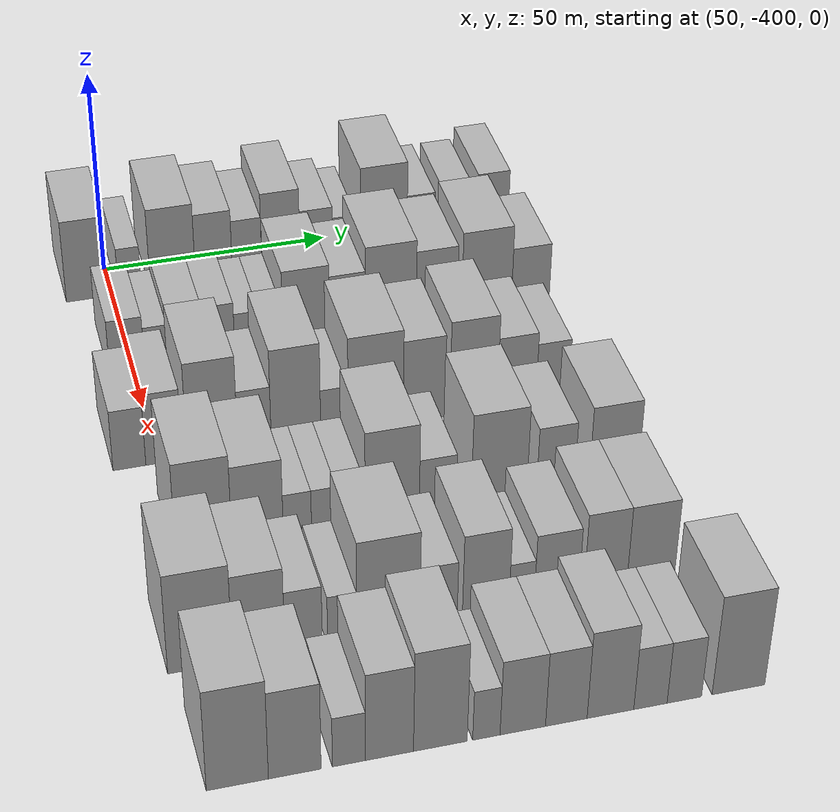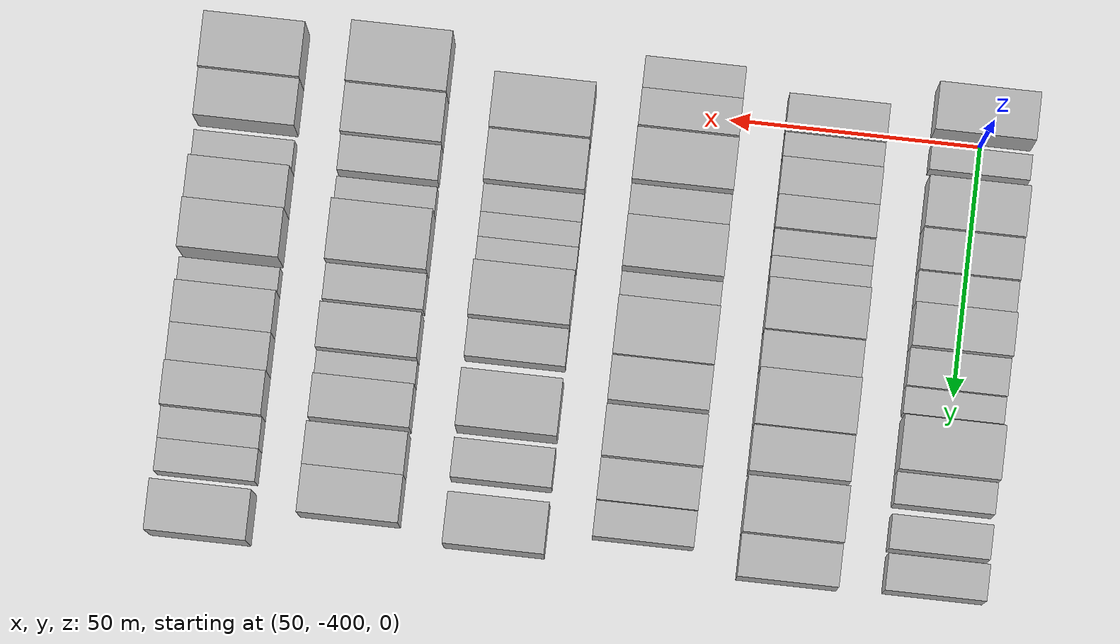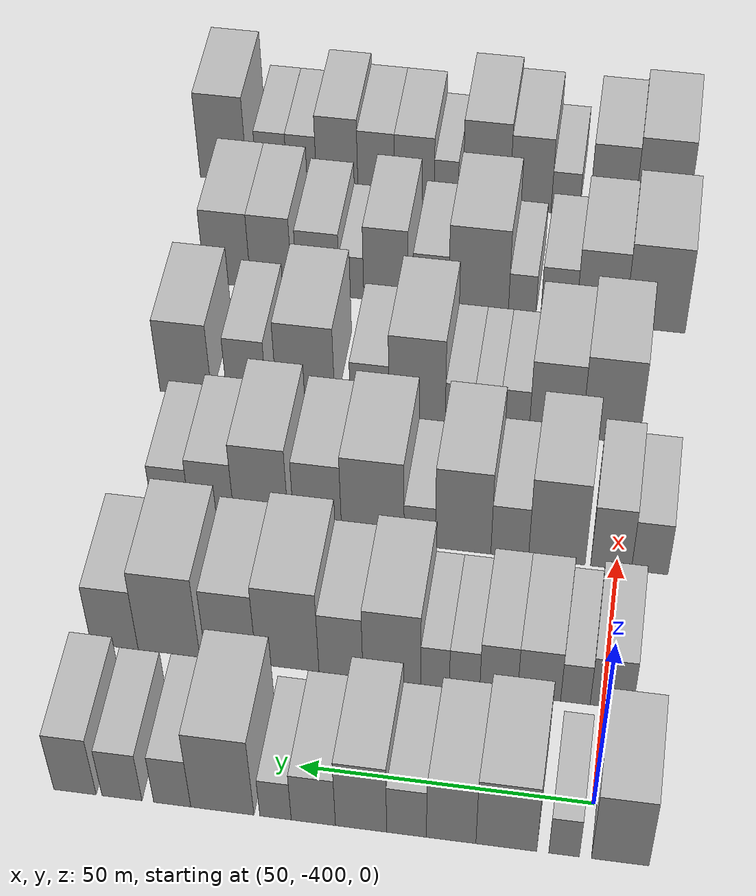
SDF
<sdf version="1.6">
 <world name="default">
  <model name="building_12">
   <static>1</static>
   <pose>50.0000 -405.2079 0 0.000000 0.000000 0.000000</pose>
   <link name="link">
    <pose>0 0 10.50 0 0 0</pose>
    <collision name="collision"><geometry><box><size>20.0000 9.4835 21.0000</size></box></geometry></collision>
    <visual name="visual">
     <cast_shadows>0</cast_shadows>
     <geometry><box><size>20.0000 9.4835 21.0000</size></box></geometry>
     <material>
      <script>
       <uri>model://HANNAS_wall/materials/scripts</uri>
       <uri>model://HANNAS_wall/materials/textures</uri>
       <name>vrc/HANNAS_wall</name>
      </script>
     </material>
    </visual>
   </link>
  </model>
  <model name="building_13">
   <static>1</static>
   <pose>50.0000 -395.9396 0 0.000000 0.000000 0.000000</pose>
   <link name="link">
    <pose>0 0 6.00 0 0 0</pose>
    <collision name="collision"><geometry><box><size>20.0000 5.0531 12.0000</size></box></geometry></collision>
    <visual name="visual">
     <cast_shadows>0</cast_shadows>
     <geometry><box><size>20.0000 5.0531 12.0000</size></box></geometry>
     <material>
      <script>
       <uri>model://HANNAS_wall/materials/scripts</uri>
       <uri>model://HANNAS_wall/materials/textures</uri>
       <name>vrc/HANNAS_wall</name>
      </script>
     </material>
    </visual>
   </link>
  </model>
  <model name="building_14">
   <static>1</static>
   <pose>50.0000 -386.3565 0 0.000000 0.000000 0.000000</pose>
   <link name="link">
    <pose>0 0 10.50 0 0 0</pose>
    <collision name="collision"><geometry><box><size>20.0000 10.1129 21.0000</size></box></geometry></collision>
    <visual name="visual">
     <cast_shadows>0</cast_shadows>
     <geometry><box><size>20.0000 10.1129 21.0000</size></box></geometry>
     <material>
      <script>
       <uri>model://HANNAS_wall/materials/scripts</uri>
       <uri>model://HANNAS_wall/materials/textures</uri>
       <name>vrc/HANNAS_wall</name>
      </script>
     </material>
    </visual>
   </link>
  </model>
  <model name="building_15">
   <static>1</static>
   <pose>50.0000 -377.1664 0 0.000000 0.000000 0.000000</pose>
   <link name="link">
    <pose>0 0 9.00 0 0 0</pose>
    <collision name="collision"><geometry><box><size>20.0000 8.2674 18.0000</size></box></geometry></collision>
    <visual name="visual">
     <cast_shadows>0</cast_shadows>
     <geometry><box><size>20.0000 8.2674 18.0000</size></box></geometry>
     <material>
      <script>
       <uri>model://HANNAS_wall/materials/scripts</uri>
       <uri>model://HANNAS_wall/materials/textures</uri>
       <name>vrc/HANNAS_wall</name>
      </script>
     </material>
    </visual>
   </link>
  </model>
  <model name="building_16">
   <static>1</static>
   <pose>50.0000 -369.7042 0 0.000000 0.000000 0.000000</pose>
   <link name="link">
    <pose>0 0 7.50 0 0 0</pose>
    <collision name="collision"><geometry><box><size>20.0000 6.6570 15.0000</size></box></geometry></collision>
    <visual name="visual">
     <cast_shadows>0</cast_shadows>
     <geometry><box><size>20.0000 6.6570 15.0000</size></box></geometry>
     <material>
      <script>
       <uri>model://HANNAS_wall/materials/scripts</uri>
       <uri>model://HANNAS_wall/materials/textures</uri>
       <name>vrc/HANNAS_wall</name>
      </script>
     </material>
    </visual>
   </link>
  </model>
  <model name="building_17">
   <static>1</static>
   <pose>50.0000 -362.0689 0 0.000000 0.000000 0.000000</pose>
   <link name="link">
    <pose>0 0 10.50 0 0 0</pose>
    <collision name="collision"><geometry><box><size>20.0000 8.6137 21.0000</size></box></geometry></collision>
    <visual name="visual">
     <cast_shadows>0</cast_shadows>
     <geometry><box><size>20.0000 8.6137 21.0000</size></box></geometry>
     <material>
      <script>
       <uri>model://HANNAS_wall/materials/scripts</uri>
       <uri>model://HANNAS_wall/materials/textures</uri>
       <name>vrc/HANNAS_wall</name>
      </script>
     </material>
    </visual>
   </link>
  </model>
  <model name="building_18">
   <static>1</static>
   <pose>50.0000 -354.0281 0 0.000000 0.000000 0.000000</pose>
   <link name="link">
    <pose>0 0 7.50 0 0 0</pose>
    <collision name="collision"><geometry><box><size>20.0000 7.4679 15.0000</size></box></geometry></collision>
    <visual name="visual">
     <cast_shadows>0</cast_shadows>
     <geometry><box><size>20.0000 7.4679 15.0000</size></box></geometry>
     <material>
      <script>
       <uri>model://HANNAS_wall/materials/scripts</uri>
       <uri>model://HANNAS_wall/materials/textures</uri>
       <name>vrc/HANNAS_wall</name>
      </script>
     </material>
    </visual>
   </link>
  </model>
  <model name="building_19">
   <static>1</static>
   <pose>50.0000 -347.6335 0 0.000000 0.000000 0.000000</pose>
   <link name="link">
    <pose>0 0 6.00 0 0 0</pose>
    <collision name="collision"><geometry><box><size>20.0000 5.3213 12.0000</size></box></geometry></collision>
    <visual name="visual">
     <cast_shadows>0</cast_shadows>
     <geometry><box><size>20.0000 5.3213 12.0000</size></box></geometry>
     <material>
      <script>
       <uri>model://HANNAS_wall/materials/scripts</uri>
       <uri>model://HANNAS_wall/materials/textures</uri>
       <name>vrc/HANNAS_wall</name>
      </script>
     </material>
    </visual>
   </link>
  </model>
  <model name="building_20">
   <static>1</static>
   <pose>50.0000 -338.5995 0 0.000000 0.000000 0.000000</pose>
   <link name="link">
    <pose>0 0 12.00 0 0 0</pose>
    <collision name="collision"><geometry><box><size>20.0000 10.7469 24.0000</size></box></geometry></collision>
    <visual name="visual">
     <cast_shadows>0</cast_shadows>
     <geometry><box><size>20.0000 10.7469 24.0000</size></box></geometry>
     <material>
      <script>
       <uri>model://HANNAS_wall/materials/scripts</uri>
       <uri>model://HANNAS_wall/materials/textures</uri>
       <name>vrc/HANNAS_wall</name>
      </script>
     </material>
    </visual>
   </link>
  </model>
  <model name="building_21">
   <static>1</static>
   <pose>50.0000 -330.0534 0 0.000000 0.000000 0.000000</pose>
   <link name="link">
    <pose>0 0 7.50 0 0 0</pose>
    <collision name="collision"><geometry><box><size>20.0000 6.3453 15.0000</size></box></geometry></collision>
    <visual name="visual">
     <cast_shadows>0</cast_shadows>
     <geometry><box><size>20.0000 6.3453 15.0000</size></box></geometry>
     <material>
      <script>
       <uri>model://HANNAS_wall/materials/scripts</uri>
       <uri>model://HANNAS_wall/materials/textures</uri>
       <name>vrc/HANNAS_wall</name>
      </script>
     </material>
    </visual>
   </link>
  </model>
  <model name="building_22">
   <static>1</static>
   <pose>50.0000 -321.4453 0 0.000000 0.000000 0.000000</pose>
   <link name="link">
    <pose>0 0 7.50 0 0 0</pose>
    <collision name="collision"><geometry><box><size>20.0000 6.8707 15.0000</size></box></geometry></collision>
    <visual name="visual">
     <cast_shadows>0</cast_shadows>
     <geometry><box><size>20.0000 6.8707 15.0000</size></box></geometry>
     <material>
      <script>
       <uri>model://HANNAS_wall/materials/scripts</uri>
       <uri>model://HANNAS_wall/materials/textures</uri>
       <name>vrc/HANNAS_wall</name>
      </script>
     </material>
    </visual>
   </link>
  </model>
  <model name="building_23">
   <static>1</static>
   <pose>50.0000 -313.3671 0 0.000000 0.000000 0.000000</pose>
   <link name="link">
    <pose>0 0 9.00 0 0 0</pose>
    <collision name="collision"><geometry><box><size>20.0000 7.2858 18.0000</size></box></geometry></collision>
    <visual name="visual">
     <cast_shadows>0</cast_shadows>
     <geometry><box><size>20.0000 7.2858 18.0000</size></box></geometry>
     <material>
      <script>
       <uri>model://HANNAS_wall/materials/scripts</uri>
       <uri>model://HANNAS_wall/materials/textures</uri>
       <name>vrc/HANNAS_wall</name>
      </script>
     </material>
    </visual>
   </link>
  </model>
  <model name="building_123">
   <static>1</static>
   <pose>79.0000 -401.3813 0 0.000000 0.000000 0.000000</pose>
   <link name="link">
    <pose>0 0 7.50 0 0 0</pose>
    <collision name="collision"><geometry><box><size>20.0000 7.3885 15.0000</size></box></geometry></collision>
    <visual name="visual">
     <cast_shadows>0</cast_shadows>
     <geometry><box><size>20.0000 7.3885 15.0000</size></box></geometry>
     <material>
      <script>
       <uri>model://HANNAS_wall/materials/scripts</uri>
       <uri>model://HANNAS_wall/materials/textures</uri>
       <name>vrc/HANNAS_wall</name>
      </script>
     </material>
    </visual>
   </link>
  </model>
  <model name="building_124">
   <static>1</static>
   <pose>79.0000 -395.1169 0 0.000000 0.000000 0.000000</pose>
   <link name="link">
    <pose>0 0 6.00 0 0 0</pose>
    <collision name="collision"><geometry><box><size>20.0000 5.1402 12.0000</size></box></geometry></collision>
    <visual name="visual">
     <cast_shadows>0</cast_shadows>
     <geometry><box><size>20.0000 5.1402 12.0000</size></box></geometry>
     <material>
      <script>
       <uri>model://HANNAS_wall/materials/scripts</uri>
       <uri>model://HANNAS_wall/materials/textures</uri>
       <name>vrc/HANNAS_wall</name>
      </script>
     </material>
    </visual>
   </link>
  </model>
  <model name="building_125">
   <static>1</static>
   <pose>79.0000 -388.7977 0 0.000000 0.000000 0.000000</pose>
   <link name="link">
    <pose>0 0 7.50 0 0 0</pose>
    <collision name="collision"><geometry><box><size>20.0000 7.4983 15.0000</size></box></geometry></collision>
    <visual name="visual">
     <cast_shadows>0</cast_shadows>
     <geometry><box><size>20.0000 7.4983 15.0000</size></box></geometry>
     <material>
      <script>
       <uri>model://HANNAS_wall/materials/scripts</uri>
       <uri>model://HANNAS_wall/materials/textures</uri>
       <name>vrc/HANNAS_wall</name>
      </script>
     </material>
    </visual>
   </link>
  </model>
  <model name="building_126">
   <static>1</static>
   <pose>79.0000 -381.7384 0 0.000000 0.000000 0.000000</pose>
   <link name="link">
    <pose>0 0 7.50 0 0 0</pose>
    <collision name="collision"><geometry><box><size>20.0000 6.6204 15.0000</size></box></geometry></collision>
    <visual name="visual">
     <cast_shadows>0</cast_shadows>
     <geometry><box><size>20.0000 6.6204 15.0000</size></box></geometry>
     <material>
      <script>
       <uri>model://HANNAS_wall/materials/scripts</uri>
       <uri>model://HANNAS_wall/materials/textures</uri>
       <name>vrc/HANNAS_wall</name>
      </script>
     </material>
    </visual>
   </link>
  </model>
  <model name="building_127">
   <static>1</static>
   <pose>79.0000 -375.7622 0 0.000000 0.000000 0.000000</pose>
   <link name="link">
    <pose>0 0 6.00 0 0 0</pose>
    <collision name="collision"><geometry><box><size>20.0000 5.3321 12.0000</size></box></geometry></collision>
    <visual name="visual">
     <cast_shadows>0</cast_shadows>
     <geometry><box><size>20.0000 5.3321 12.0000</size></box></geometry>
     <material>
      <script>
       <uri>model://HANNAS_wall/materials/scripts</uri>
       <uri>model://HANNAS_wall/materials/textures</uri>
       <name>vrc/HANNAS_wall</name>
      </script>
     </material>
    </visual>
   </link>
  </model>
  <model name="building_128">
   <static>1</static>
   <pose>79.0000 -370.5856 0 0.000000 0.000000 0.000000</pose>
   <link name="link">
    <pose>0 0 6.00 0 0 0</pose>
    <collision name="collision"><geometry><box><size>20.0000 5.0210 12.0000</size></box></geometry></collision>
    <visual name="visual">
     <cast_shadows>0</cast_shadows>
     <geometry><box><size>20.0000 5.0210 12.0000</size></box></geometry>
     <material>
      <script>
       <uri>model://HANNAS_wall/materials/scripts</uri>
       <uri>model://HANNAS_wall/materials/textures</uri>
       <name>vrc/HANNAS_wall</name>
      </script>
     </material>
    </visual>
   </link>
  </model>
  <model name="building_129">
   <static>1</static>
   <pose>79.0000 -362.9795 0 0.000000 0.000000 0.000000</pose>
   <link name="link">
    <pose>0 0 10.50 0 0 0</pose>
    <collision name="collision"><geometry><box><size>20.0000 10.1913 21.0000</size></box></geometry></collision>
    <visual name="visual">
     <cast_shadows>0</cast_shadows>
     <geometry><box><size>20.0000 10.1913 21.0000</size></box></geometry>
     <material>
      <script>
       <uri>model://HANNAS_wall/materials/scripts</uri>
       <uri>model://HANNAS_wall/materials/textures</uri>
       <name>vrc/HANNAS_wall</name>
      </script>
     </material>
    </visual>
   </link>
  </model>
  <model name="building_130">
   <static>1</static>
   <pose>79.0000 -353.9873 0 0.000000 0.000000 0.000000</pose>
   <link name="link">
    <pose>0 0 9.00 0 0 0</pose>
    <collision name="collision"><geometry><box><size>20.0000 7.7932 18.0000</size></box></geometry></collision>
    <visual name="visual">
     <cast_shadows>0</cast_shadows>
     <geometry><box><size>20.0000 7.7932 18.0000</size></box></geometry>
     <material>
      <script>
       <uri>model://HANNAS_wall/materials/scripts</uri>
       <uri>model://HANNAS_wall/materials/textures</uri>
       <name>vrc/HANNAS_wall</name>
      </script>
     </material>
    </visual>
   </link>
  </model>
  <model name="building_131">
   <static>1</static>
   <pose>79.0000 -344.5176 0 0.000000 0.000000 0.000000</pose>
   <link name="link">
    <pose>0 0 12.00 0 0 0</pose>
    <collision name="collision"><geometry><box><size>20.0000 11.1462 24.0000</size></box></geometry></collision>
    <visual name="visual">
     <cast_shadows>0</cast_shadows>
     <geometry><box><size>20.0000 11.1462 24.0000</size></box></geometry>
     <material>
      <script>
       <uri>model://HANNAS_wall/materials/scripts</uri>
       <uri>model://HANNAS_wall/materials/textures</uri>
       <name>vrc/HANNAS_wall</name>
      </script>
     </material>
    </visual>
   </link>
  </model>
  <model name="building_132">
   <static>1</static>
   <pose>79.0000 -334.4008 0 0.000000 0.000000 0.000000</pose>
   <link name="link">
    <pose>0 0 10.50 0 0 0</pose>
    <collision name="collision"><geometry><box><size>20.0000 9.0874 21.0000</size></box></geometry></collision>
    <visual name="visual">
     <cast_shadows>0</cast_shadows>
     <geometry><box><size>20.0000 9.0874 21.0000</size></box></geometry>
     <material>
      <script>
       <uri>model://HANNAS_wall/materials/scripts</uri>
       <uri>model://HANNAS_wall/materials/textures</uri>
       <name>vrc/HANNAS_wall</name>
      </script>
     </material>
    </visual>
   </link>
  </model>
  <model name="building_133">
   <static>1</static>
   <pose>79.0000 -323.3001 0 0.000000 0.000000 0.000000</pose>
   <link name="link">
    <pose>0 0 12.00 0 0 0</pose>
    <collision name="collision"><geometry><box><size>20.0000 11.1140 24.0000</size></box></geometry></collision>
    <visual name="visual">
     <cast_shadows>0</cast_shadows>
     <geometry><box><size>20.0000 11.1140 24.0000</size></box></geometry>
     <material>
      <script>
       <uri>model://HANNAS_wall/materials/scripts</uri>
       <uri>model://HANNAS_wall/materials/textures</uri>
       <name>vrc/HANNAS_wall</name>
      </script>
     </material>
    </visual>
   </link>
  </model>
  <model name="building_134">
   <static>1</static>
   <pose>79.0000 -313.4877 0 0.000000 0.000000 0.000000</pose>
   <link name="link">
    <pose>0 0 9.00 0 0 0</pose>
    <collision name="collision"><geometry><box><size>20.0000 8.5107 18.0000</size></box></geometry></collision>
    <visual name="visual">
     <cast_shadows>0</cast_shadows>
     <geometry><box><size>20.0000 8.5107 18.0000</size></box></geometry>
     <material>
      <script>
       <uri>model://HANNAS_wall/materials/scripts</uri>
       <uri>model://HANNAS_wall/materials/textures</uri>
       <name>vrc/HANNAS_wall</name>
      </script>
     </material>
    </visual>
   </link>
  </model>
  <model name="building_236">
   <static>1</static>
   <pose>108.0000 -405.9427 0 0.000000 0.000000 0.000000</pose>
   <link name="link">
    <pose>0 0 7.50 0 0 0</pose>
    <collision name="collision"><geometry><box><size>20.0000 6.6379 15.0000</size></box></geometry></collision>
    <visual name="visual">
     <cast_shadows>0</cast_shadows>
     <geometry><box><size>20.0000 6.6379 15.0000</size></box></geometry>
     <material>
      <script>
       <uri>model://HANNAS_wall/materials/scripts</uri>
       <uri>model://HANNAS_wall/materials/textures</uri>
       <name>vrc/HANNAS_wall</name>
      </script>
     </material>
    </visual>
   </link>
  </model>
  <model name="building_237">
   <static>1</static>
   <pose>108.0000 -398.9185 0 0.000000 0.000000 0.000000</pose>
   <link name="link">
    <pose>0 0 9.00 0 0 0</pose>
    <collision name="collision"><geometry><box><size>20.0000 7.4104 18.0000</size></box></geometry></collision>
    <visual name="visual">
     <cast_shadows>0</cast_shadows>
     <geometry><box><size>20.0000 7.4104 18.0000</size></box></geometry>
     <material>
      <script>
       <uri>model://HANNAS_wall/materials/scripts</uri>
       <uri>model://HANNAS_wall/materials/textures</uri>
       <name>vrc/HANNAS_wall</name>
      </script>
     </material>
    </visual>
   </link>
  </model>
  <model name="building_238">
   <static>1</static>
   <pose>108.0000 -389.0398 0 0.000000 0.000000 0.000000</pose>
   <link name="link">
    <pose>0 0 12.00 0 0 0</pose>
    <collision name="collision"><geometry><box><size>20.0000 10.3471 24.0000</size></box></geometry></collision>
    <visual name="visual">
     <cast_shadows>0</cast_shadows>
     <geometry><box><size>20.0000 10.3471 24.0000</size></box></geometry>
     <material>
      <script>
       <uri>model://HANNAS_wall/materials/scripts</uri>
       <uri>model://HANNAS_wall/materials/textures</uri>
       <name>vrc/HANNAS_wall</name>
      </script>
     </material>
    </visual>
   </link>
  </model>
  <model name="building_239">
   <static>1</static>
   <pose>108.0000 -380.4194 0 0.000000 0.000000 0.000000</pose>
   <link name="link">
    <pose>0 0 7.50 0 0 0</pose>
    <collision name="collision"><geometry><box><size>20.0000 6.8937 15.0000</size></box></geometry></collision>
    <visual name="visual">
     <cast_shadows>0</cast_shadows>
     <geometry><box><size>20.0000 6.8937 15.0000</size></box></geometry>
     <material>
      <script>
       <uri>model://HANNAS_wall/materials/scripts</uri>
       <uri>model://HANNAS_wall/materials/textures</uri>
       <name>vrc/HANNAS_wall</name>
      </script>
     </material>
    </visual>
   </link>
  </model>
  <model name="building_240">
   <static>1</static>
   <pose>108.0000 -371.8518 0 0.000000 0.000000 0.000000</pose>
   <link name="link">
    <pose>0 0 12.00 0 0 0</pose>
    <collision name="collision"><geometry><box><size>20.0000 10.2416 24.0000</size></box></geometry></collision>
    <visual name="visual">
     <cast_shadows>0</cast_shadows>
     <geometry><box><size>20.0000 10.2416 24.0000</size></box></geometry>
     <material>
      <script>
       <uri>model://HANNAS_wall/materials/scripts</uri>
       <uri>model://HANNAS_wall/materials/textures</uri>
       <name>vrc/HANNAS_wall</name>
      </script>
     </material>
    </visual>
   </link>
  </model>
  <model name="building_241">
   <static>1</static>
   <pose>108.0000 -363.8658 0 0.000000 0.000000 0.000000</pose>
   <link name="link">
    <pose>0 0 6.00 0 0 0</pose>
    <collision name="collision"><geometry><box><size>20.0000 5.7305 12.0000</size></box></geometry></collision>
    <visual name="visual">
     <cast_shadows>0</cast_shadows>
     <geometry><box><size>20.0000 5.7305 12.0000</size></box></geometry>
     <material>
      <script>
       <uri>model://HANNAS_wall/materials/scripts</uri>
       <uri>model://HANNAS_wall/materials/textures</uri>
       <name>vrc/HANNAS_wall</name>
      </script>
     </material>
    </visual>
   </link>
  </model>
  <model name="building_242">
   <static>1</static>
   <pose>108.0000 -355.2248 0 0.000000 0.000000 0.000000</pose>
   <link name="link">
    <pose>0 0 12.00 0 0 0</pose>
    <collision name="collision"><geometry><box><size>20.0000 11.5516 24.0000</size></box></geometry></collision>
    <visual name="visual">
     <cast_shadows>0</cast_shadows>
     <geometry><box><size>20.0000 11.5516 24.0000</size></box></geometry>
     <material>
      <script>
       <uri>model://HANNAS_wall/materials/scripts</uri>
       <uri>model://HANNAS_wall/materials/textures</uri>
       <name>vrc/HANNAS_wall</name>
      </script>
     </material>
    </visual>
   </link>
  </model>
  <model name="building_243">
   <static>1</static>
   <pose>108.0000 -345.0332 0 0.000000 0.000000 0.000000</pose>
   <link name="link">
    <pose>0 0 10.50 0 0 0</pose>
    <collision name="collision"><geometry><box><size>20.0000 8.8317 21.0000</size></box></geometry></collision>
    <visual name="visual">
     <cast_shadows>0</cast_shadows>
     <geometry><box><size>20.0000 8.8317 21.0000</size></box></geometry>
     <material>
      <script>
       <uri>model://HANNAS_wall/materials/scripts</uri>
       <uri>model://HANNAS_wall/materials/textures</uri>
       <name>vrc/HANNAS_wall</name>
      </script>
     </material>
    </visual>
   </link>
  </model>
  <model name="building_244">
   <static>1</static>
   <pose>108.0000 -334.5467 0 0.000000 0.000000 0.000000</pose>
   <link name="link">
    <pose>0 0 12.00 0 0 0</pose>
    <collision name="collision"><geometry><box><size>20.0000 10.1412 24.0000</size></box></geometry></collision>
    <visual name="visual">
     <cast_shadows>0</cast_shadows>
     <geometry><box><size>20.0000 10.1412 24.0000</size></box></geometry>
     <material>
      <script>
       <uri>model://HANNAS_wall/materials/scripts</uri>
       <uri>model://HANNAS_wall/materials/textures</uri>
       <name>vrc/HANNAS_wall</name>
      </script>
     </material>
    </visual>
   </link>
  </model>
  <model name="building_245">
   <static>1</static>
   <pose>108.0000 -325.3088 0 0.000000 0.000000 0.000000</pose>
   <link name="link">
    <pose>0 0 9.00 0 0 0</pose>
    <collision name="collision"><geometry><box><size>20.0000 8.3347 18.0000</size></box></geometry></collision>
    <visual name="visual">
     <cast_shadows>0</cast_shadows>
     <geometry><box><size>20.0000 8.3347 18.0000</size></box></geometry>
     <material>
      <script>
       <uri>model://HANNAS_wall/materials/scripts</uri>
       <uri>model://HANNAS_wall/materials/textures</uri>
       <name>vrc/HANNAS_wall</name>
      </script>
     </material>
    </visual>
   </link>
  </model>
  <model name="building_246">
   <static>1</static>
   <pose>108.0000 -317.5844 0 0.000000 0.000000 0.000000</pose>
   <link name="link">
    <pose>0 0 7.50 0 0 0</pose>
    <collision name="collision"><geometry><box><size>20.0000 7.1140 15.0000</size></box></geometry></collision>
    <visual name="visual">
     <cast_shadows>0</cast_shadows>
     <geometry><box><size>20.0000 7.1140 15.0000</size></box></geometry>
     <material>
      <script>
       <uri>model://HANNAS_wall/materials/scripts</uri>
       <uri>model://HANNAS_wall/materials/textures</uri>
       <name>vrc/HANNAS_wall</name>
      </script>
     </material>
    </visual>
   </link>
  </model>
  <model name="building_347">
   <static>1</static>
   <pose>137.0000 -396.4269 0 0.000000 0.000000 0.000000</pose>
   <link name="link">
    <pose>0 0 12.00 0 0 0</pose>
    <collision name="collision"><geometry><box><size>20.0000 10.9160 24.0000</size></box></geometry></collision>
    <visual name="visual">
     <cast_shadows>0</cast_shadows>
     <geometry><box><size>20.0000 10.9160 24.0000</size></box></geometry>
     <material>
      <script>
       <uri>model://HANNAS_wall/materials/scripts</uri>
       <uri>model://HANNAS_wall/materials/textures</uri>
       <name>vrc/HANNAS_wall</name>
      </script>
     </material>
    </visual>
   </link>
  </model>
  <model name="building_348">
   <static>1</static>
   <pose>137.0000 -385.9497 0 0.000000 0.000000 0.000000</pose>
   <link name="link">
    <pose>0 0 10.50 0 0 0</pose>
    <collision name="collision"><geometry><box><size>20.0000 10.0385 21.0000</size></box></geometry></collision>
    <visual name="visual">
     <cast_shadows>0</cast_shadows>
     <geometry><box><size>20.0000 10.0385 21.0000</size></box></geometry>
     <material>
      <script>
       <uri>model://HANNAS_wall/materials/scripts</uri>
       <uri>model://HANNAS_wall/materials/textures</uri>
       <name>vrc/HANNAS_wall</name>
      </script>
     </material>
    </visual>
   </link>
  </model>
  <model name="building_349">
   <static>1</static>
   <pose>137.0000 -378.1486 0 0.000000 0.000000 0.000000</pose>
   <link name="link">
    <pose>0 0 6.00 0 0 0</pose>
    <collision name="collision"><geometry><box><size>20.0000 5.5636 12.0000</size></box></geometry></collision>
    <visual name="visual">
     <cast_shadows>0</cast_shadows>
     <geometry><box><size>20.0000 5.5636 12.0000</size></box></geometry>
     <material>
      <script>
       <uri>model://HANNAS_wall/materials/scripts</uri>
       <uri>model://HANNAS_wall/materials/textures</uri>
       <name>vrc/HANNAS_wall</name>
      </script>
     </material>
    </visual>
   </link>
  </model>
  <model name="building_350">
   <static>1</static>
   <pose>137.0000 -372.8815 0 0.000000 0.000000 0.000000</pose>
   <link name="link">
    <pose>0 0 6.00 0 0 0</pose>
    <collision name="collision"><geometry><box><size>20.0000 4.9707 12.0000</size></box></geometry></collision>
    <visual name="visual">
     <cast_shadows>0</cast_shadows>
     <geometry><box><size>20.0000 4.9707 12.0000</size></box></geometry>
     <material>
      <script>
       <uri>model://HANNAS_wall/materials/scripts</uri>
       <uri>model://HANNAS_wall/materials/textures</uri>
       <name>vrc/HANNAS_wall</name>
      </script>
     </material>
    </visual>
   </link>
  </model>
  <model name="building_351">
   <static>1</static>
   <pose>137.0000 -367.5848 0 0.000000 0.000000 0.000000</pose>
   <link name="link">
    <pose>0 0 6.00 0 0 0</pose>
    <collision name="collision"><geometry><box><size>20.0000 5.6225 12.0000</size></box></geometry></collision>
    <visual name="visual">
     <cast_shadows>0</cast_shadows>
     <geometry><box><size>20.0000 5.6225 12.0000</size></box></geometry>
     <material>
      <script>
       <uri>model://HANNAS_wall/materials/scripts</uri>
       <uri>model://HANNAS_wall/materials/textures</uri>
       <name>vrc/HANNAS_wall</name>
      </script>
     </material>
    </visual>
   </link>
  </model>
  <model name="building_352">
   <static>1</static>
   <pose>137.0000 -359.3547 0 0.000000 0.000000 0.000000</pose>
   <link name="link">
    <pose>0 0 12.00 0 0 0</pose>
    <collision name="collision"><geometry><box><size>20.0000 10.8378 24.0000</size></box></geometry></collision>
    <visual name="visual">
     <cast_shadows>0</cast_shadows>
     <geometry><box><size>20.0000 10.8378 24.0000</size></box></geometry>
     <material>
      <script>
       <uri>model://HANNAS_wall/materials/scripts</uri>
       <uri>model://HANNAS_wall/materials/textures</uri>
       <name>vrc/HANNAS_wall</name>
      </script>
     </material>
    </visual>
   </link>
  </model>
  <model name="building_353">
   <static>1</static>
   <pose>137.0000 -350.1995 0 0.000000 0.000000 0.000000</pose>
   <link name="link">
    <pose>0 0 7.50 0 0 0</pose>
    <collision name="collision"><geometry><box><size>20.0000 7.4725 15.0000</size></box></geometry></collision>
    <visual name="visual">
     <cast_shadows>0</cast_shadows>
     <geometry><box><size>20.0000 7.4725 15.0000</size></box></geometry>
     <material>
      <script>
       <uri>model://HANNAS_wall/materials/scripts</uri>
       <uri>model://HANNAS_wall/materials/textures</uri>
       <name>vrc/HANNAS_wall</name>
      </script>
     </material>
    </visual>
   </link>
  </model>
  <model name="building_354">
   <static>1</static>
   <pose>137.0000 -337.8016 0 0.000000 0.000000 0.000000</pose>
   <link name="link">
    <pose>0 0 12.00 0 0 0</pose>
    <collision name="collision"><geometry><box><size>20.0000 11.3235 24.0000</size></box></geometry></collision>
    <visual name="visual">
     <cast_shadows>0</cast_shadows>
     <geometry><box><size>20.0000 11.3235 24.0000</size></box></geometry>
     <material>
      <script>
       <uri>model://HANNAS_wall/materials/scripts</uri>
       <uri>model://HANNAS_wall/materials/textures</uri>
       <name>vrc/HANNAS_wall</name>
      </script>
     </material>
    </visual>
   </link>
  </model>
  <model name="building_355">
   <static>1</static>
   <pose>137.0000 -326.2420 0 0.000000 0.000000 0.000000</pose>
   <link name="link">
    <pose>0 0 9.00 0 0 0</pose>
    <collision name="collision"><geometry><box><size>20.0000 7.7956 18.0000</size></box></geometry></collision>
    <visual name="visual">
     <cast_shadows>0</cast_shadows>
     <geometry><box><size>20.0000 7.7956 18.0000</size></box></geometry>
     <material>
      <script>
       <uri>model://HANNAS_wall/materials/scripts</uri>
       <uri>model://HANNAS_wall/materials/textures</uri>
       <name>vrc/HANNAS_wall</name>
      </script>
     </material>
    </visual>
   </link>
  </model>
  <model name="building_356">
   <static>1</static>
   <pose>137.0000 -314.2425 0 0.000000 0.000000 0.000000</pose>
   <link name="link">
    <pose>0 0 10.50 0 0 0</pose>
    <collision name="collision"><geometry><box><size>20.0000 10.2035 21.0000</size></box></geometry></collision>
    <visual name="visual">
     <cast_shadows>0</cast_shadows>
     <geometry><box><size>20.0000 10.2035 21.0000</size></box></geometry>
     <material>
      <script>
       <uri>model://HANNAS_wall/materials/scripts</uri>
       <uri>model://HANNAS_wall/materials/textures</uri>
       <name>vrc/HANNAS_wall</name>
      </script>
     </material>
    </visual>
   </link>
  </model>
  <model name="building_455">
   <static>1</static>
   <pose>166.0000 -402.8628 0 0.000000 0.000000 0.000000</pose>
   <link name="link">
    <pose>0 0 12.00 0 0 0</pose>
    <collision name="collision"><geometry><box><size>20.0000 11.9568 24.0000</size></box></geometry></collision>
    <visual name="visual">
     <cast_shadows>0</cast_shadows>
     <geometry><box><size>20.0000 11.9568 24.0000</size></box></geometry>
     <material>
      <script>
       <uri>model://HANNAS_wall/materials/scripts</uri>
       <uri>model://HANNAS_wall/materials/textures</uri>
       <name>vrc/HANNAS_wall</name>
      </script>
     </material>
    </visual>
   </link>
  </model>
  <model name="building_456">
   <static>1</static>
   <pose>166.0000 -392.0213 0 0.000000 0.000000 0.000000</pose>
   <link name="link">
    <pose>0 0 10.50 0 0 0</pose>
    <collision name="collision"><geometry><box><size>20.0000 9.7262 21.0000</size></box></geometry></collision>
    <visual name="visual">
     <cast_shadows>0</cast_shadows>
     <geometry><box><size>20.0000 9.7262 21.0000</size></box></geometry>
     <material>
      <script>
       <uri>model://HANNAS_wall/materials/scripts</uri>
       <uri>model://HANNAS_wall/materials/textures</uri>
       <name>vrc/HANNAS_wall</name>
      </script>
     </material>
    </visual>
   </link>
  </model>
  <model name="building_457">
   <static>1</static>
   <pose>166.0000 -383.6453 0 0.000000 0.000000 0.000000</pose>
   <link name="link">
    <pose>0 0 7.50 0 0 0</pose>
    <collision name="collision"><geometry><box><size>20.0000 7.0258 15.0000</size></box></geometry></collision>
    <visual name="visual">
     <cast_shadows>0</cast_shadows>
     <geometry><box><size>20.0000 7.0258 15.0000</size></box></geometry>
     <material>
      <script>
       <uri>model://HANNAS_wall/materials/scripts</uri>
       <uri>model://HANNAS_wall/materials/textures</uri>
       <name>vrc/HANNAS_wall</name>
      </script>
     </material>
    </visual>
   </link>
  </model>
  <model name="building_458">
   <static>1</static>
   <pose>166.0000 -376.3888 0 0.000000 0.000000 0.000000</pose>
   <link name="link">
    <pose>0 0 6.00 0 0 0</pose>
    <collision name="collision"><geometry><box><size>20.0000 5.4874 12.0000</size></box></geometry></collision>
    <visual name="visual">
     <cast_shadows>0</cast_shadows>
     <geometry><box><size>20.0000 5.4874 12.0000</size></box></geometry>
     <material>
      <script>
       <uri>model://HANNAS_wall/materials/scripts</uri>
       <uri>model://HANNAS_wall/materials/textures</uri>
       <name>vrc/HANNAS_wall</name>
      </script>
     </material>
    </visual>
   </link>
  </model>
  <model name="building_459">
   <static>1</static>
   <pose>166.0000 -367.6506 0 0.000000 0.000000 0.000000</pose>
   <link name="link">
    <pose>0 0 12.00 0 0 0</pose>
    <collision name="collision"><geometry><box><size>20.0000 11.9889 24.0000</size></box></geometry></collision>
    <visual name="visual">
     <cast_shadows>0</cast_shadows>
     <geometry><box><size>20.0000 11.9889 24.0000</size></box></geometry>
     <material>
      <script>
       <uri>model://HANNAS_wall/materials/scripts</uri>
       <uri>model://HANNAS_wall/materials/textures</uri>
       <name>vrc/HANNAS_wall</name>
      </script>
     </material>
    </visual>
   </link>
  </model>
  <model name="building_460">
   <static>1</static>
   <pose>166.0000 -358.0845 0 0.000000 0.000000 0.000000</pose>
   <link name="link">
    <pose>0 0 7.50 0 0 0</pose>
    <collision name="collision"><geometry><box><size>20.0000 7.1433 15.0000</size></box></geometry></collision>
    <visual name="visual">
     <cast_shadows>0</cast_shadows>
     <geometry><box><size>20.0000 7.1433 15.0000</size></box></geometry>
     <material>
      <script>
       <uri>model://HANNAS_wall/materials/scripts</uri>
       <uri>model://HANNAS_wall/materials/textures</uri>
       <name>vrc/HANNAS_wall</name>
      </script>
     </material>
    </visual>
   </link>
  </model>
  <model name="building_461">
   <static>1</static>
   <pose>166.0000 -349.0232 0 0.000000 0.000000 0.000000</pose>
   <link name="link">
    <pose>0 0 10.50 0 0 0</pose>
    <collision name="collision"><geometry><box><size>20.0000 8.9792 21.0000</size></box></geometry></collision>
    <visual name="visual">
     <cast_shadows>0</cast_shadows>
     <geometry><box><size>20.0000 8.9792 21.0000</size></box></geometry>
     <material>
      <script>
       <uri>model://HANNAS_wall/materials/scripts</uri>
       <uri>model://HANNAS_wall/materials/textures</uri>
       <name>vrc/HANNAS_wall</name>
      </script>
     </material>
    </visual>
   </link>
  </model>
  <model name="building_462">
   <static>1</static>
   <pose>166.0000 -342.0851 0 0.000000 0.000000 0.000000</pose>
   <link name="link">
    <pose>0 0 6.00 0 0 0</pose>
    <collision name="collision"><geometry><box><size>20.0000 4.8970 12.0000</size></box></geometry></collision>
    <visual name="visual">
     <cast_shadows>0</cast_shadows>
     <geometry><box><size>20.0000 4.8970 12.0000</size></box></geometry>
     <material>
      <script>
       <uri>model://HANNAS_wall/materials/scripts</uri>
       <uri>model://HANNAS_wall/materials/textures</uri>
       <name>vrc/HANNAS_wall</name>
      </script>
     </material>
    </visual>
   </link>
  </model>
  <model name="building_463">
   <static>1</static>
   <pose>166.0000 -335.3006 0 0.000000 0.000000 0.000000</pose>
   <link name="link">
    <pose>0 0 9.00 0 0 0</pose>
    <collision name="collision"><geometry><box><size>20.0000 8.6720 18.0000</size></box></geometry></collision>
    <visual name="visual">
     <cast_shadows>0</cast_shadows>
     <geometry><box><size>20.0000 8.6720 18.0000</size></box></geometry>
     <material>
      <script>
       <uri>model://HANNAS_wall/materials/scripts</uri>
       <uri>model://HANNAS_wall/materials/textures</uri>
       <name>vrc/HANNAS_wall</name>
      </script>
     </material>
    </visual>
   </link>
  </model>
  <model name="building_464">
   <static>1</static>
   <pose>166.0000 -325.7339 0 0.000000 0.000000 0.000000</pose>
   <link name="link">
    <pose>0 0 10.50 0 0 0</pose>
    <collision name="collision"><geometry><box><size>20.0000 8.4614 21.0000</size></box></geometry></collision>
    <visual name="visual">
     <cast_shadows>0</cast_shadows>
     <geometry><box><size>20.0000 8.4614 21.0000</size></box></geometry>
     <material>
      <script>
       <uri>model://HANNAS_wall/materials/scripts</uri>
       <uri>model://HANNAS_wall/materials/textures</uri>
       <name>vrc/HANNAS_wall</name>
      </script>
     </material>
    </visual>
   </link>
  </model>
  <model name="building_465">
   <static>1</static>
   <pose>166.0000 -316.7822 0 0.000000 0.000000 0.000000</pose>
   <link name="link">
    <pose>0 0 10.50 0 0 0</pose>
    <collision name="collision"><geometry><box><size>20.0000 9.4420 21.0000</size></box></geometry></collision>
    <visual name="visual">
     <cast_shadows>0</cast_shadows>
     <geometry><box><size>20.0000 9.4420 21.0000</size></box></geometry>
     <material>
      <script>
       <uri>model://HANNAS_wall/materials/scripts</uri>
       <uri>model://HANNAS_wall/materials/textures</uri>
       <name>vrc/HANNAS_wall</name>
      </script>
     </material>
    </visual>
   </link>
  </model>
  <model name="building_572">
   <static>1</static>
   <pose>195.0000 -401.9899 0 0.000000 0.000000 0.000000</pose>
   <link name="link">
    <pose>0 0 12.00 0 0 0</pose>
    <collision name="collision"><geometry><box><size>20.0000 10.9211 24.0000</size></box></geometry></collision>
    <visual name="visual">
     <cast_shadows>0</cast_shadows>
     <geometry><box><size>20.0000 10.9211 24.0000</size></box></geometry>
     <material>
      <script>
       <uri>model://HANNAS_wall/materials/scripts</uri>
       <uri>model://HANNAS_wall/materials/textures</uri>
       <name>vrc/HANNAS_wall</name>
      </script>
     </material>
    </visual>
   </link>
  </model>
  <model name="building_573">
   <static>1</static>
   <pose>195.0000 -391.8651 0 0.000000 0.000000 0.000000</pose>
   <link name="link">
    <pose>0 0 10.50 0 0 0</pose>
    <collision name="collision"><geometry><box><size>20.0000 9.3285 21.0000</size></box></geometry></collision>
    <visual name="visual">
     <cast_shadows>0</cast_shadows>
     <geometry><box><size>20.0000 9.3285 21.0000</size></box></geometry>
     <material>
      <script>
       <uri>model://HANNAS_wall/materials/scripts</uri>
       <uri>model://HANNAS_wall/materials/textures</uri>
       <name>vrc/HANNAS_wall</name>
      </script>
     </material>
    </visual>
   </link>
  </model>
  <model name="building_574">
   <static>1</static>
   <pose>195.0000 -382.2535 0 0.000000 0.000000 0.000000</pose>
   <link name="link">
    <pose>0 0 6.00 0 0 0</pose>
    <collision name="collision"><geometry><box><size>20.0000 5.8947 12.0000</size></box></geometry></collision>
    <visual name="visual">
     <cast_shadows>0</cast_shadows>
     <geometry><box><size>20.0000 5.8947 12.0000</size></box></geometry>
     <material>
      <script>
       <uri>model://HANNAS_wall/materials/scripts</uri>
       <uri>model://HANNAS_wall/materials/textures</uri>
       <name>vrc/HANNAS_wall</name>
      </script>
     </material>
    </visual>
   </link>
  </model>
  <model name="building_575">
   <static>1</static>
   <pose>195.0000 -374.9673 0 0.000000 0.000000 0.000000</pose>
   <link name="link">
    <pose>0 0 10.50 0 0 0</pose>
    <collision name="collision"><geometry><box><size>20.0000 8.6776 21.0000</size></box></geometry></collision>
    <visual name="visual">
     <cast_shadows>0</cast_shadows>
     <geometry><box><size>20.0000 8.6776 21.0000</size></box></geometry>
     <material>
      <script>
       <uri>model://HANNAS_wall/materials/scripts</uri>
       <uri>model://HANNAS_wall/materials/textures</uri>
       <name>vrc/HANNAS_wall</name>
      </script>
     </material>
    </visual>
   </link>
  </model>
  <model name="building_576">
   <static>1</static>
   <pose>195.0000 -365.7547 0 0.000000 0.000000 0.000000</pose>
   <link name="link">
    <pose>0 0 12.00 0 0 0</pose>
    <collision name="collision"><geometry><box><size>20.0000 9.7478 24.0000</size></box></geometry></collision>
    <visual name="visual">
     <cast_shadows>0</cast_shadows>
     <geometry><box><size>20.0000 9.7478 24.0000</size></box></geometry>
     <material>
      <script>
       <uri>model://HANNAS_wall/materials/scripts</uri>
       <uri>model://HANNAS_wall/materials/textures</uri>
       <name>vrc/HANNAS_wall</name>
      </script>
     </material>
    </visual>
   </link>
  </model>
  <model name="building_577">
   <static>1</static>
   <pose>195.0000 -357.3795 0 0.000000 0.000000 0.000000</pose>
   <link name="link">
    <pose>0 0 6.00 0 0 0</pose>
    <collision name="collision"><geometry><box><size>20.0000 5.0025 12.0000</size></box></geometry></collision>
    <visual name="visual">
     <cast_shadows>0</cast_shadows>
     <geometry><box><size>20.0000 5.0025 12.0000</size></box></geometry>
     <material>
      <script>
       <uri>model://HANNAS_wall/materials/scripts</uri>
       <uri>model://HANNAS_wall/materials/textures</uri>
       <name>vrc/HANNAS_wall</name>
      </script>
     </material>
    </visual>
   </link>
  </model>
  <model name="building_578">
   <static>1</static>
   <pose>195.0000 -350.6916 0 0.000000 0.000000 0.000000</pose>
   <link name="link">
    <pose>0 0 9.00 0 0 0</pose>
    <collision name="collision"><geometry><box><size>20.0000 8.3732 18.0000</size></box></geometry></collision>
    <visual name="visual">
     <cast_shadows>0</cast_shadows>
     <geometry><box><size>20.0000 8.3732 18.0000</size></box></geometry>
     <material>
      <script>
       <uri>model://HANNAS_wall/materials/scripts</uri>
       <uri>model://HANNAS_wall/materials/textures</uri>
       <name>vrc/HANNAS_wall</name>
      </script>
     </material>
    </visual>
   </link>
  </model>
  <model name="building_579">
   <static>1</static>
   <pose>195.0000 -342.6514 0 0.000000 0.000000 0.000000</pose>
   <link name="link">
    <pose>0 0 9.00 0 0 0</pose>
    <collision name="collision"><geometry><box><size>20.0000 7.7072 18.0000</size></box></geometry></collision>
    <visual name="visual">
     <cast_shadows>0</cast_shadows>
     <geometry><box><size>20.0000 7.7072 18.0000</size></box></geometry>
     <material>
      <script>
       <uri>model://HANNAS_wall/materials/scripts</uri>
       <uri>model://HANNAS_wall/materials/textures</uri>
       <name>vrc/HANNAS_wall</name>
      </script>
     </material>
    </visual>
   </link>
  </model>
  <model name="building_580">
   <static>1</static>
   <pose>195.0000 -334.4329 0 0.000000 0.000000 0.000000</pose>
   <link name="link">
    <pose>0 0 10.50 0 0 0</pose>
    <collision name="collision"><geometry><box><size>20.0000 8.7299 21.0000</size></box></geometry></collision>
    <visual name="visual">
     <cast_shadows>0</cast_shadows>
     <geometry><box><size>20.0000 8.7299 21.0000</size></box></geometry>
     <material>
      <script>
       <uri>model://HANNAS_wall/materials/scripts</uri>
       <uri>model://HANNAS_wall/materials/textures</uri>
       <name>vrc/HANNAS_wall</name>
      </script>
     </material>
    </visual>
   </link>
  </model>
  <model name="building_581">
   <static>1</static>
   <pose>195.0000 -326.9323 0 0.000000 0.000000 0.000000</pose>
   <link name="link">
    <pose>0 0 7.50 0 0 0</pose>
    <collision name="collision"><geometry><box><size>20.0000 6.2713 15.0000</size></box></geometry></collision>
    <visual name="visual">
     <cast_shadows>0</cast_shadows>
     <geometry><box><size>20.0000 6.2713 15.0000</size></box></geometry>
     <material>
      <script>
       <uri>model://HANNAS_wall/materials/scripts</uri>
       <uri>model://HANNAS_wall/materials/textures</uri>
       <name>vrc/HANNAS_wall</name>
      </script>
     </material>
    </visual>
   </link>
  </model>
  <model name="building_582">
   <static>1</static>
   <pose>195.0000 -320.5383 0 0.000000 0.000000 0.000000</pose>
   <link name="link">
    <pose>0 0 7.50 0 0 0</pose>
    <collision name="collision"><geometry><box><size>20.0000 6.5166 15.0000</size></box></geometry></collision>
    <visual name="visual">
     <cast_shadows>0</cast_shadows>
     <geometry><box><size>20.0000 6.5166 15.0000</size></box></geometry>
     <material>
      <script>
       <uri>model://HANNAS_wall/materials/scripts</uri>
       <uri>model://HANNAS_wall/materials/textures</uri>
       <name>vrc/HANNAS_wall</name>
      </script>
     </material>
    </visual>
   </link>
  </model>
  <model name="building_583">
   <static>1</static>
   <pose>195.0000 -310.2527 0 0.000000 0.000000 0.000000</pose>
   <link name="link">
    <pose>0 0 12.00 0 0 0</pose>
    <collision name="collision"><geometry><box><size>20.0000 10.0546 24.0000</size></box></geometry></collision>
    <visual name="visual">
     <cast_shadows>0</cast_shadows>
     <geometry><box><size>20.0000 10.0546 24.0000</size></box></geometry>
     <material>
      <script>
       <uri>model://HANNAS_wall/materials/scripts</uri>
       <uri>model://HANNAS_wall/materials/textures</uri>
       <name>vrc/HANNAS_wall</name>
      </script>
     </material>
    </visual>
   </link>
  </model>
 </world>
</sdf>
